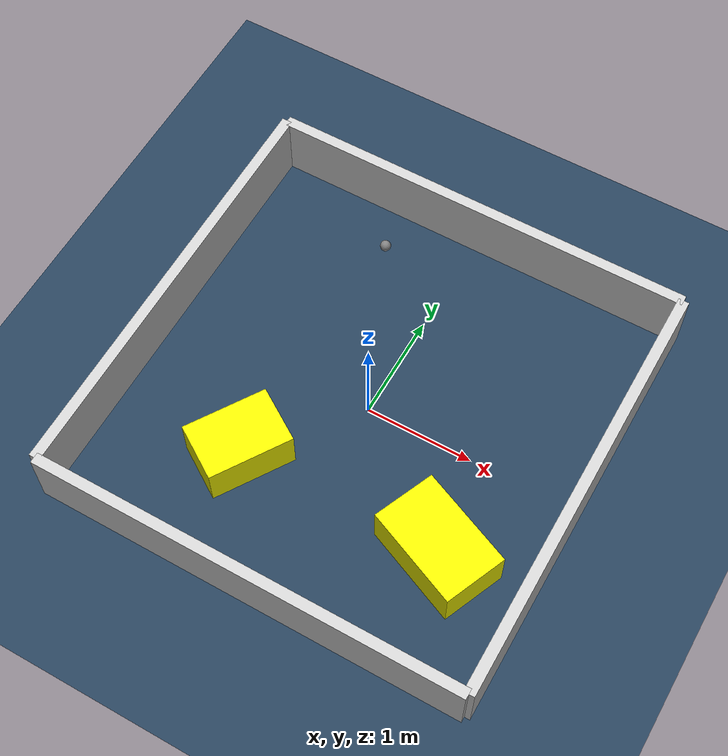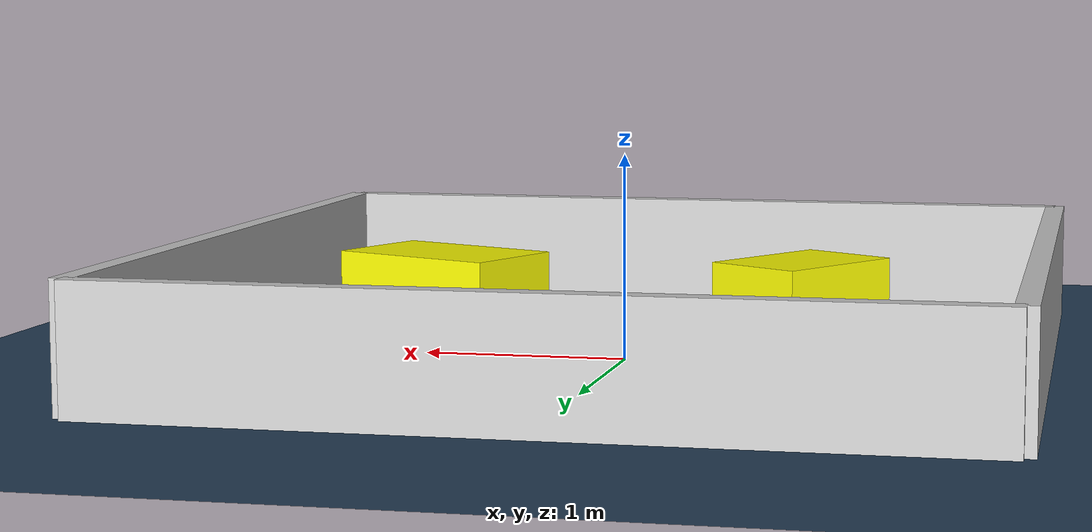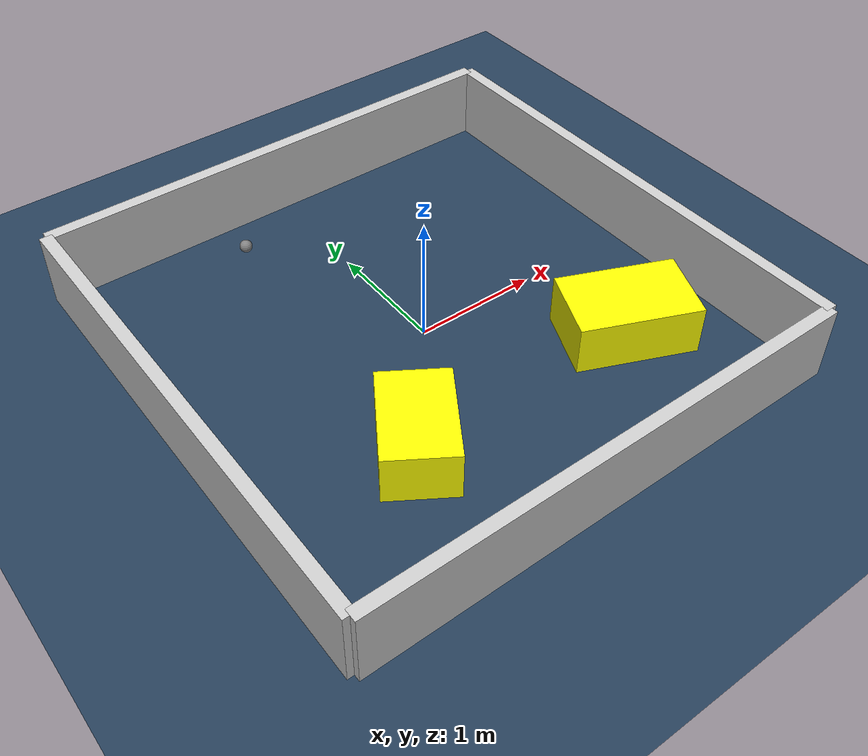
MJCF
<?xml version="1.0" ?>
<mujoco model="generated_environment">
  <option timestep="0.01" integrator="RK4" cone="elliptic"/>
  <default>
    <geom density="1"/>
  </default>
  <asset>
    <texture builtin="gradient" height="3072" rgb1="0.3 0.5 0.7" rgb2="0 0 0" type="skybox" width="512"/>
    <texture builtin="checker" height="300" mark="edge" markrgb="0.8 0.8 0.8" name="groundplane" rgb1="0.2 0.3 0.4" rgb2="0.1 0.2 0.3" type="2d" width="300"/>
    <material name="groundplane" reflectance="0.2" texrepeat="5 5" texture="groundplane" texuniform="true"/>
    <material name="robot" rgba="0.0 1.0 0.0 1"/>
  </asset>
  <worldbody>
    <light dir="0 0 -1" directional="true" pos="0 0 1.5"/>
    <geom condim="4" friction="1.0 0.005 0.001" material="groundplane" name="floor" size="0 0 0.05" type="plane"/>
    <body name="walls">
      <geom name="wall_1" condim="4" pos="-2.0 0.0 0.3" rgba="0.800000011920929 0.800000011920929 0.800000011920929 1.0" size="0.05 2.0 0.3" type="box"/>
      <geom name="wall_2" condim="4" pos="2.0 0.0 0.3" rgba="0.800000011920929 0.800000011920929 0.800000011920929 1.0" size="0.05 2.0 0.3" type="box"/>
      <geom name="wall_3" condim="4" pos="0.0 -2.0 0.3" rgba="0.800000011920929 0.800000011920929 0.800000011920929 1.0" size="2.0 0.05 0.3" type="box"/>
      <geom name="wall_4" condim="4" pos="0.0 2.0 0.3" rgba="0.800000011920929 0.800000011920929 0.800000011920929 1.0" size="2.0 0.05 0.3" type="box"/>
    </body>
    <body name="robot">
      <joint name="joint_x" type="slide" pos="0 0 0" axis="1 0 0"/>
      <joint name="joint_y" type="slide" pos="0 0 0" axis="0 1 0"/>
      <geom name="robot" type="sphere" pos="-0.6534683369941998 1.467819188011927 0.2" size="0.05" mass="5." friction="1.0 0.005 0.0001" condim="4"/>
      <site name="sensor_ball"/>
    </body>
    <body name="obstacle_1_movable">
      <geom name="obstacle_1_movable" condim="4" pos="1.1714718743315986 -0.9079638263207275 0.2" euler="0 0 246.92081137410347" friction="1.0 0.005 0.001" rgba="1 1 0 1" size="0.296685081091157 0.4716619562650853 0.2" type="box" mass="0.1"/>
      <joint type="free"/>
    </body>
    <body name="obstacle_2_movable">
      <geom name="obstacle_2_movable" condim="4" pos="-0.7444674710065766 -0.9116723660358862 0.2" euler="0 0 57.331056576567676" friction="1.0 0.005 0.001" rgba="1 1 0 1" size="0.39082673839115495 0.26873480431274405 0.2" type="box" mass="0.1"/>
      <joint type="free"/>
    </body>
  </worldbody>
  <actuator>
    <motor name="actuator_x" joint="joint_x" gear="1" ctrlrange="-1 1"/>
    <motor name="actuator_y" joint="joint_y" gear="1" ctrlrange="-1 1"/>
  </actuator>
</mujoco>
